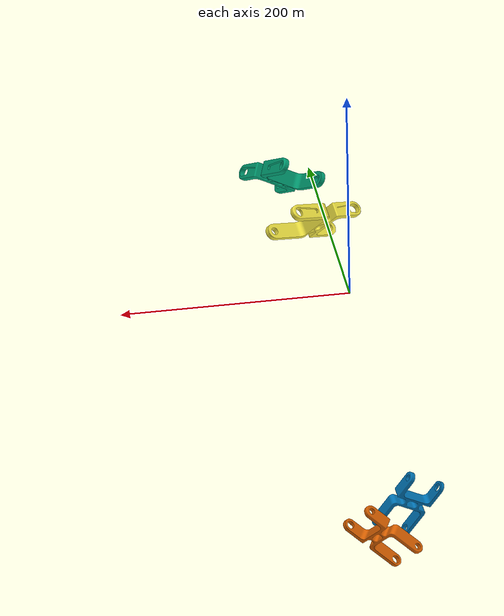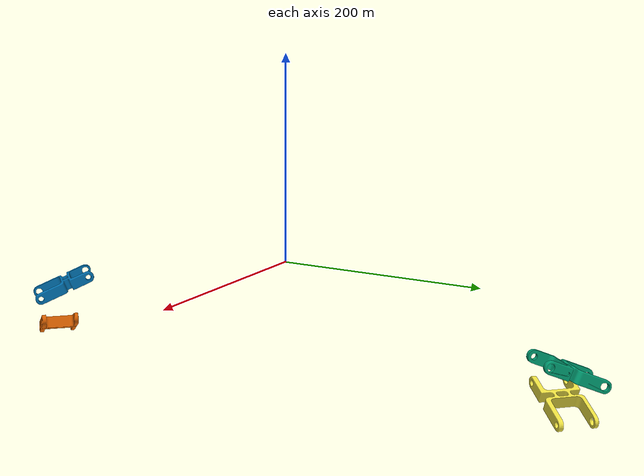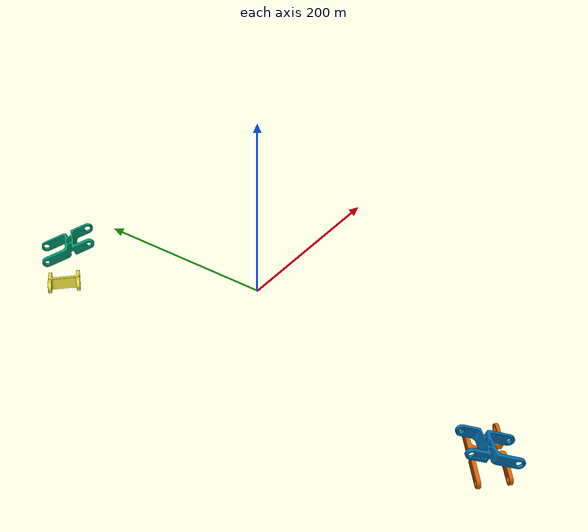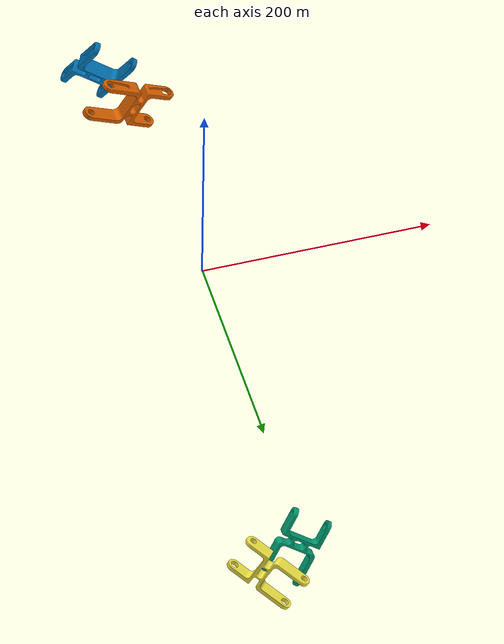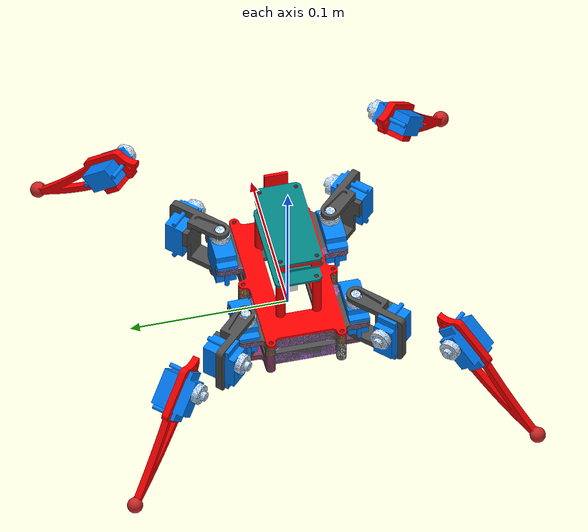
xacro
<?xml version="1.0"?>
<robot name="open_critter" xmlns:xacro="http://www.ros.org/wiki/xacro">

  <xacro:include filename="$(find open_critter)/xacro/inertia.xacro"/>
  <xacro:include filename="$(find open_critter)/xacro/leg.xacro"/>

  <xacro:property name="use_stand" value="false"/>
  <xacro:property name="rubber_paw" value="true"/>

  <xacro:if value="${use_stand}">
    <link name="stand_link">
      <visual>
        <origin rpy="0 0 0" xyz="0 0 0"/>
        <geometry>
          <box size="0.2 0.2 0.02"/>
        </geometry>
      </visual>
      <collision>
        <origin rpy="0 0 0" xyz="0 0 0"/>
        <geometry>
          <box size="0.2 0.2 0.02"/>
        </geometry>
      </collision>
      <inertial>
        <origin rpy="0 0 0" xyz="0 0 0"/>
        <geometry>
          <box size="0.2 0.2 0.02"/>
        </geometry>
          <mass value="10.0"/>
          <xacro:box_inertia m="10.0" x="0.2" y="0.2" z="0.02" />
      </inertial>
    </link>

    <joint name="stand_joint" type="fixed">
      <parent link="stand_link"/>
      <child link="base_link"/>
      <origin rpy="0 0 0" xyz="0.0 0.0 0.4"/>
    </joint>
  </xacro:if>

  <link name="base_footprint"/>
  <joint name="stand_joint" type="fixed">
    <parent link="base_footprint"/>
    <child link="base_link"/>
    <origin rpy="0 0 0" xyz="0.0 0.0 0.0"/>
  </joint>

  <link name="base_link">
    <visual>
      <origin rpy="0 0 3.14" xyz="0.0 0.0 0.04"/>
      <geometry>
        <mesh filename="package://open_critter/meshes/collada/body.dae"/>
      </geometry>
    </visual>
    <collision>
      <origin rpy="0 0 3.14" xyz="0.0 0.0 0.04"/>
      <geometry>
        <mesh filename="package://open_critter/meshes/collada/body.dae"/>
      </geometry>
    </collision>
    <inertial>
      <origin rpy="0 0 0" xyz="0 0 0"/>
      <geometry>
        <box size="0.1 0.05 0.03"/>
      </geometry>
        <mass value="1.0"/>
        <xacro:box_inertia m="1.0" x="0.1" y="0.05" z="0.03" />
    </inertial>
  </link>

  <xacro:leg name="front_left" odd="true" paw="${rubber_paw}" parent_link="base_link">
    <origin xyz="0.03 0.035 0.0225" rpy="0 0 ${pi}"/>
  </xacro:leg>

  <xacro:leg name="rear_left" odd="false" paw="${rubber_paw}" parent_link="base_link">
    <origin xyz="-0.03 0.035 0.0225" rpy="0 0 0"/>
  </xacro:leg>

  <xacro:leg name="rear_right" odd="true" paw="${rubber_paw}" parent_link="base_link">
    <origin xyz="-0.03 -0.035 0.0225" rpy="0 0 0"/>
  </xacro:leg>

  <xacro:leg name="front_right" odd="false" paw="${rubber_paw}" parent_link="base_link">
    <origin xyz="0.03 -0.035 0.0225" rpy="0 0 ${pi}"/>
  </xacro:leg>

  <xacro:property name="imu_size" value="0.01"/>
  <xacro:property name="imu_mass" value="0.01"/>

  <link name="imu_link">
    <visual>
      <geometry>
        <box size="${imu_size} ${imu_size} ${imu_size}"/>
      </geometry>
      <material name="white"/>
    </visual>
    <collision>
      <geometry>
        <box size="${imu_size} ${imu_size} ${imu_size}"/>
      </geometry>
    </collision>
    <xacro:box_inertia m="${imu_mass}" x="${imu_size}" y="${imu_size}" z="${imu_size}"/>
  </link>
  <joint name="base_imu_joint" type="fixed">
    <parent link="base_link"/>
    <child link="imu_link"/>
    <origin xyz="0 0 0.02" rpy="0 0 0"/>
  </joint>

  <gazebo reference="imu_link">
      <gravity>true</gravity>
      <sensor name="imu_sensor" type="imu">
          <always_on>true</always_on>
          <update_rate>100</update_rate>
          <visualize>false</visualize>
          <plugin filename="libgazebo_ros_imu_sensor.so" name="imu_plugin">
              <topicName>/open_critter/imu</topicName>
              <bodyName>imu_link</bodyName>
              <updateRateHZ>100.0</updateRateHZ>
              <gaussianNoise>0.0001</gaussianNoise>
              <xyzOffset>0 0 0</xyzOffset>
              <rpyOffset>0 0 0</rpyOffset>
              <frameName>imu_link</frameName>
          </plugin>
      </sensor>
  </gazebo>

  <gazebo>
    <plugin name="joint_state_publisher" filename="libgazebo_ros_joint_state_publisher.so">
      <robotNamespace>/open_critter</robotNamespace>
      <jointName>
        front_left_coxa_joint,
        front_right_coxa_joint,
        rear_right_coxa_joint,
        rear_left_coxa_joint,
        front_left_femur_joint,
        front_right_femur_joint,
        rear_right_femur_joint,
        rear_left_femur_joint,
        front_left_tibia_joint,
        front_right_tibia_joint,
        rear_right_tibia_joint,
        rear_left_tibia_joint
      </jointName>
      <updateRate>60.0</updateRate>
      <alwaysOn>true</alwaysOn>
    </plugin>
  </gazebo>

  <gazebo>
      <plugin name="gazebo_ros_control" filename="libgazebo_ros_control.so">
          <robotNamespace>/open_critter</robotNamespace>
      </plugin>
  </gazebo>

  <gazebo>
      <plugin name="p3d_base_controller" filename="libgazebo_ros_p3d.so">
          <alwaysOn>true</alwaysOn>
          <updateRate>100.0</updateRate>
          <bodyName>base_link</bodyName>
          <topicName>/gazebo/odom</topicName>
          <gaussianNoise>0.00001</gaussianNoise>
          <frameName>world</frameName>
          <xyzOffsets>0 0 0</xyzOffsets>
          <rpyOffsets>0 0 0</rpyOffsets>
      </plugin>
  </gazebo>

</robot>

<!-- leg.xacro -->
<robot xmlns:xacro="http://www.ros.org/wiki/xacro">

<xacro:include filename="$(find open_critter)/xacro/inertia.xacro"/>

<xacro:macro name="leg" params="name odd parent_link paw *origin">

  <xacro:property name="servo_effort"    value="1.0"/>
  <xacro:property name="servo_velocity"  value="4.0"/>
  <xacro:property name="servo_torque"    value="1.0"/>
  <xacro:property name="servo_reduction" value="1.0"/>

  <xacro:property name="coxa_lower" value="-1.0"/>
  <xacro:property name="coxa_upper" value="1.0"/>

  <xacro:if value="${odd}">
    <xacro:property name="coxa_model"  value="package://open_critter/meshes/collada/coxa_front.dae"/>
    <xacro:property name="tibia_model" value="package://open_critter/meshes/collada/tibia_rear.dae"/>
    <xacro:property name="yaw" value="0"/>
    <xacro:property name="cyaw" value="${-pi/4}"/>
    <xacro:property name="nyaw" value="${pi}"/>
    <xacro:property name="side" value="1.0"/>
    <xacro:property name="servo_x" value="0"/>
    <xacro:property name="tibia_x" value="0.0075"/>
    <xacro:property name="paw_x" value="0.0015"/>

  </xacro:if>
  <xacro:unless value="${odd}"> <!-- EVEN -->
    <xacro:property name="coxa_model" value="package://open_critter/meshes/collada/coxa_rear.dae"/>
    <xacro:property name="tibia_model" value="package://open_critter/meshes/collada/tibia_front.dae"/>
    <xacro:property name="yaw" value="${pi}"/>
    <xacro:property name="cyaw" value="${pi+pi/4}"/>
    <xacro:property name="nyaw" value="0"/>
    <xacro:property name="side" value="-1.0"/>
    <xacro:property name="servo_x" value="-0.005"/>
    <xacro:property name="tibia_x" value="-0.0025"/>
    <xacro:property name="paw_x" value="0.0035"/>

  </xacro:unless>

  <joint name="${name}_base" type="fixed">
    <parent link="${parent_link}"/>
    <child link="${name}_coxa_servo"/>
    <xacro:insert_block name="origin"/>
  </joint>

  <link name="${name}_coxa_servo">
    <visual>
      <origin rpy="0 0 0" xyz="0 0 0"/>
      <geometry>
        <mesh filename="package://open_critter/meshes/collada/servo.dae"/>
      </geometry>
    </visual>
    <inertial>
      <origin rpy="0 0 0" xyz="0 0 0"/>
      <geometry>
        <box size="0.02 0.01 0.03"/>
      </geometry>
        <mass value="0.1"/>
        <xacro:box_inertia m="0.1" x="0.02" y="0.01" z="0.03" />
    </inertial>
  </link>

  <joint name="${name}_coxa_joint" type="revolute">
    <parent link="${name}_coxa_servo"/>
    <child link="${name}_coxa_link"/>
    <origin rpy="0 0 ${cyaw}" xyz="-0.005 0 -0.002"/>
    <limit effort="${servo_effort}" velocity="${servo_velocity}" lower="${coxa_lower}" upper="${coxa_upper}"/>
    <axis xyz="0 0 1"/>
  </joint>
  <transmission name="${name}_coxa_transmission">
      <type>transmission_interface/SimpleTransmission</type>
      <joint name="${name}_coxa_joint">
          <hardwareInterface>hardware_interface/EffortJointInterface</hardwareInterface>
      </joint>
      <actuator name="${name}_coxa_actuator">
          <hardwareInterface>hardware_interface/EffortJointInterface</hardwareInterface>
          <mechanicalReduction>${servo_reduction}</mechanicalReduction>
          <motorTorqueConstant>${servo_torque}</motorTorqueConstant>
      </actuator>
  </transmission>

  <link name="${name}_coxa_link">
    <visual>
    <origin rpy="0 0 ${yaw}" xyz="${side*0.002} -0.016 0"/>
      <geometry>
        <mesh filename="${coxa_model}"/>
      </geometry>
    </visual>
    <collision>
    <origin rpy="0 0 ${yaw}" xyz="${side*0.002} -0.016 0"/>
      <geometry>
        <mesh filename="${coxa_model}"/>
      </geometry>
    </collision>
    <inertial>
      <origin rpy="0 0 0" xyz="0 0 0"/>
      <geometry>
        <box size="0.04 0.01 0.03"/>
      </geometry>
        <mass value="0.1"/>
        <xacro:box_inertia m="0.1" x="0.04" y="0.01" z="0.03" />
    </inertial>
  </link>
  <gazebo reference="${name}_coxa_link">
    <gravity>true</gravity>
    <selfCollide>true</selfCollide>
  </gazebo>

  <joint name="${name}_femur_servo_to_coxa_joint" type="fixed">
    <parent link="${name}_coxa_link"/>
    <child link="${name}_femur_servo"/>
    <origin rpy="0 0 0" xyz="${side*-0.005} -0.0275 0"/>
  </joint>

  <link name="${name}_femur_servo">
    <visual>
      <origin rpy="0 ${pi/2} ${nyaw}" xyz="0 0 0"/>
      <geometry>
        <mesh filename="package://open_critter/meshes/collada/servo.dae"/>
      </geometry>
    </visual>
    <inertial>
      <origin rpy="0 ${pi/2} ${nyaw}" xyz="0 0 0"/>
      <geometry>
        <box size="0.02 0.01 0.03"/>
      </geometry>
        <mass value="0.1"/>
        <xacro:box_inertia m="0.1" x="0.02" y="0.01" z="0.03" />
    </inertial>
  </link>

  <joint name="${name}_femur_joint" type="revolute">
    <parent link="${name}_femur_servo"/>
    <child link="${name}_femur_link"/>
    <origin rpy="${-pi/8} 0 0" xyz="${servo_x} 0 0.005"/>
    <limit effort="${servo_effort}" velocity="${servo_velocity}" lower="-1.0" upper="1.0"/>
    <axis xyz="${-1*side} 0 0"/>
  </joint>
  <transmission name="${name}_femur_transmission">
      <type>transmission_interface/SimpleTransmission</type>
      <joint name="${name}_femur_joint">
          <hardwareInterface>hardware_interface/EffortJointInterface</hardwareInterface>
      </joint>
      <actuator name="${name}_femur_actuator">
          <hardwareInterface>hardware_interface/EffortJointInterface</hardwareInterface>
          <mechanicalReduction>${servo_reduction}</mechanicalReduction>
          <motorTorqueConstant>${servo_torque}</motorTorqueConstant>
      </actuator>
  </transmission>

  <link name="${name}_femur_link">
    <visual>
    <origin rpy="0 ${nyaw} 0" xyz="0.0025 -0.0275 0"/>
      <geometry>
        <mesh filename="package://open_critter/meshes/collada/femur.dae"/>
      </geometry>
    </visual>
    <collision>
    <origin rpy="0 ${nyaw} 0" xyz="0.0025 -0.0275 0"/>
      <geometry>
        <mesh filename="package://open_critter/meshes/collada/femur.dae"/>
      </geometry>
    </collision>
    <inertial>
      <origin rpy="0 0 0" xyz="0 0 0"/>
      <geometry>
        <box size="0.05 0.01 0.03"/>
      </geometry>
        <mass value="0.2"/>
        <xacro:box_inertia m="0.2" x="0.05" y="0.01" z="0.03" />
    </inertial>
  </link>
  <gazebo reference="${name}_femur_link">
    <gravity>true</gravity>
    <selfCollide>true</selfCollide>
  </gazebo>

  <joint name="${name}_tibia_joint" type="revolute">
    <parent link="${name}_femur_link"/>
    <child link="${name}_tibia_servo"/>
    <origin rpy="${-pi/8} 0 0" xyz="0 -0.055 0"/>
    <limit effort="${servo_effort}" velocity="${servo_velocity}" lower="-1.0" upper="1.0"/>
    <axis xyz="${side} 0 0"/>
  </joint>
  <transmission name="${name}_tibia_transmission">
      <type>transmission_interface/SimpleTransmission</type>
      <joint name="${name}_tibia_joint">
          <hardwareInterface>hardware_interface/EffortJointInterface</hardwareInterface>
      </joint>
      <actuator name="${name}_tibia_actuator">
          <hardwareInterface>hardware_interface/EffortJointInterface</hardwareInterface>
          <mechanicalReduction>${servo_reduction}</mechanicalReduction>
          <motorTorqueConstant>${servo_torque}</motorTorqueConstant>
      </actuator>
  </transmission>

  <link name="${name}_tibia_servo">
    <visual>
      <origin rpy="0 ${pi/2} ${nyaw}" xyz="${side*servo_x} 0 -0.005"/>
      <geometry>
        <mesh filename="package://open_critter/meshes/collada/servo.dae"/>
      </geometry>
    </visual>
    <inertial>
      <origin rpy="0 ${pi/2} ${nyaw}" xyz="${side*servo_x} 0 -0.005"/>
      <geometry>
        <box size="0.02 0.01 0.03"/>
      </geometry>
        <mass value="0.1"/>
        <xacro:box_inertia m="0.1" x="0.02" y="0.01" z="0.03" />
    </inertial>
  </link>

  <joint name="${name}_tibia_servo_to_femur_joint" type="fixed">
    <parent link="${name}_tibia_servo"/>
    <child link="${name}_tibia_link"/>
    <origin rpy="0 0 0" xyz="0 0 0"/>
  </joint>

  <link name="${name}_tibia_link">
    <visual>
      <origin rpy="0 0 ${nyaw}" xyz="${tibia_x} 0 -0.03"/>
      <geometry>
        <mesh filename="${tibia_model}"/>
      </geometry>
    </visual>
    <collision>
      <origin rpy="0 0 ${nyaw}" xyz="${tibia_x} 0 -0.03"/>
      <geometry>
        <mesh filename="${tibia_model}"/>
      </geometry>
    </collision>
    <inertial>
      <origin rpy="0 0 0" xyz="0 0 0"/>
      <geometry>
        <box size="0.1 0.005 0.005"/>
      </geometry>
        <mass value="0.1"/>
        <xacro:box_inertia m="0.1" x="0.1" y="0.005" z="0.005" />
    </inertial>
  </link>
  <gazebo reference="${name}_tibia_link">
    <mu1 value="5.0"/>
    <mu2 value="0.5"/>
    <kp value="10000000.0" />
    <kd value="1.0" />
    <fdir1 value="1 0 0"/>
    <turnGravityOff>false</turnGravityOff>
    <selfCollide>true</selfCollide>
  </gazebo>

  <!-- RUBBER BALL PAW -->
  <xacro:if value="${paw}">

    <joint name="${name}_tibia_paw_joint" type="fixed">
      <parent link="${name}_tibia_link"/>
      <child link="${name}_paw_link"/>
      <origin rpy="0 0 0" xyz="${paw_x} 0 -0.08"/>
    </joint>

    <link name="${name}_paw_link">
      <visual>
        <origin rpy="0 0 0" xyz="0 0 0"/>
        <geometry>
          <sphere radius="0.005"/>
        </geometry>
      </visual>
      <collision>
        <origin rpy="0 0 0" xyz="0 0 0"/>
        <geometry>
          <sphere radius="0.005"/>
        </geometry>
      </collision>
      <inertial>
        <origin rpy="0 0 0" xyz="0 0 0"/>
        <geometry>
          <sphere radius="0.005"/>
        </geometry>
          <mass value="0.1"/>
          <xacro:sphere_inertia m="0.1" r="0.005"/>
      </inertial>
    </link>

    <gazebo reference="${name}_paw_link">
      <gravity>true</gravity>
      <selfCollide>true</selfCollide>
      <mu1>100.0</mu1>
      <mu2>50.0</mu2>
      <kp>1000000.0</kp>
      <kd>1.0</kd>
      <fdir1>1 0 0</fdir1>
      <maxContacts>1</maxContacts>
      <minDepth>0.0002</minDepth>
      <collision name="${name}__paw_link_collision">
        <geometry>
            <sphere>
            <radius>0.005</radius>
        </sphere>
        </geometry>
        <surface>
          <friction>
            <torsional>
                <coefficient>1000000</coefficient>
                <use_patch_radius>true</use_patch_radius>
                <surface_radius>0.005</surface_radius>
                <patch_radius>0.005</patch_radius>
            </torsional>
          </friction>
          <contact>
            <poissons_ratio>0.01</poissons_ratio>
            <elastic_modulus>1e8</elastic_modulus>
          </contact>
        </surface>
      </collision>
      <material>Gazebo/Red</material>
    </gazebo>
  </xacro:if>

</xacro:macro>

</robot>
